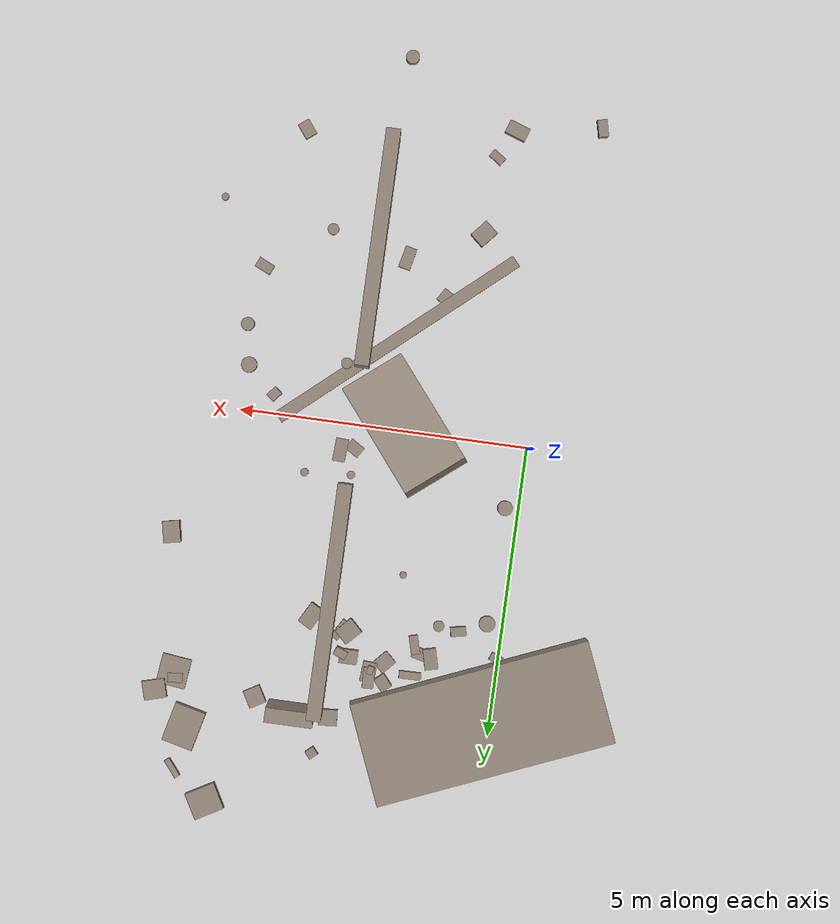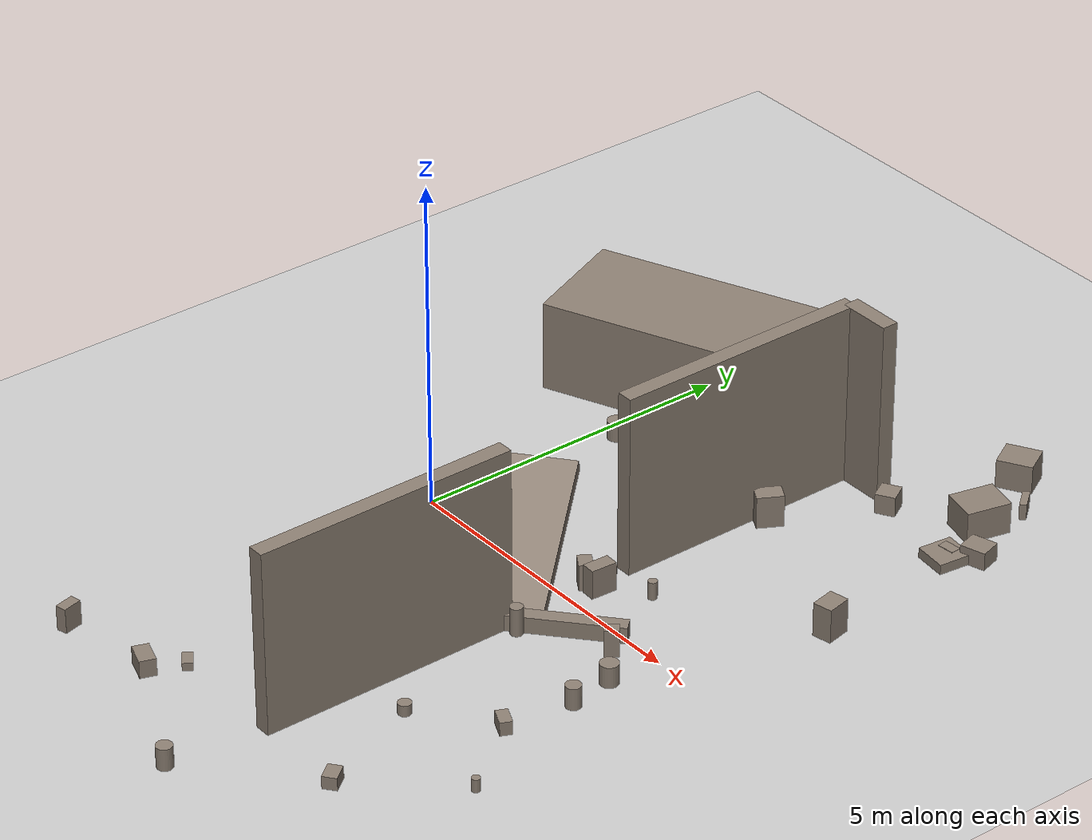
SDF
<sdf version="1.6">
 <world name="default">
  <model name="ground_plane">
   <static>1</static>
   <link name="link">
    <collision name="collision">
     <geometry><plane><normal>0 0 1</normal><size>100 100</size></plane></geometry>
     <surface><friction><ode><mu>100</mu><mu2>50</mu2></ode></friction></surface>
    </collision>
    <visual name="visual">
     <cast_shadows>0</cast_shadows>
     <geometry><plane><normal>0 0 1</normal><size>100 100</size></plane></geometry>
     <material>
      <script><uri>file://media/materials/scripts/gazebo.material</uri><name>Gazebo/Grey</name></script>
     </material>
    </visual>
   </link>
  </model>
  <model name="outer0_0">
   <static>1</static>
   <pose>3.000 -3.000 1.400 0 0.0000 1.5708</pose>
   <link name="l">
    <collision name="c"><geometry><box><size>4.000 0.250 2.800</size></box></geometry></collision>
    <visual name="v">
     <geometry><box><size>4.000 0.250 2.800</size></box></geometry>
     <material><ambient>0.55 0.5 0.45 1</ambient><diffuse>0.55 0.5 0.45 1</diffuse></material>
    </visual>
   </link>
  </model>
  <model name="outer0_1">
   <static>1</static>
   <pose>3.000 3.000 1.400 0 0.0000 1.5708</pose>
   <link name="l">
    <collision name="c"><geometry><box><size>4.000 0.250 2.800</size></box></geometry></collision>
    <visual name="v">
     <geometry><box><size>4.000 0.250 2.800</size></box></geometry>
     <material><ambient>0.55 0.5 0.45 1</ambient><diffuse>0.55 0.5 0.45 1</diffuse></material>
    </visual>
   </link>
  </model>
  <model name="outer3_0">
   <static>1</static>
   <pose>3.408 5.000 1.400 0 0.0000 0.0000</pose>
   <link name="l">
    <collision name="c"><geometry><box><size>0.816 0.250 2.800</size></box></geometry></collision>
    <visual name="v">
     <geometry><box><size>0.816 0.250 2.800</size></box></geometry>
     <material><ambient>0.55 0.5 0.45 1</ambient><diffuse>0.55 0.5 0.45 1</diffuse></material>
    </visual>
   </link>
  </model>
  <model name="rubble_16">
   <static>1</static>
   <pose>3.176 0.452 0.225 0 0.0000 3.0814</pose>
   <link name="l">
    <collision name="c"><geometry><box><size>0.215 0.399 0.449</size></box></geometry></collision>
    <visual name="v">
     <geometry><box><size>0.215 0.399 0.449</size></box></geometry>
     <material><ambient>0.55 0.5 0.45 1</ambient><diffuse>0.55 0.5 0.45 1</diffuse></material>
    </visual>
   </link>
  </model>
  <model name="rubble_17">
   <static>1</static>
   <pose>2.495 -0.105 0.134 0 0.0000 1.6504</pose>
   <link name="l">
    <collision name="c"><geometry><box><size>0.141 0.316 0.269</size></box></geometry></collision>
    <visual name="v">
     <geometry><box><size>0.141 0.316 0.269</size></box></geometry>
     <material><ambient>0.55 0.5 0.45 1</ambient><diffuse>0.55 0.5 0.45 1</diffuse></material>
    </visual>
   </link>
  </model>
  <model name="rubble_18">
   <static>1</static>
   <pose>2.935 0.392 0.203 0 0.0000 1.0112</pose>
   <link name="l">
    <collision name="c"><geometry><box><size>0.207 0.271 0.405</size></box></geometry></collision>
    <visual name="v">
     <geometry><box><size>0.207 0.271 0.405</size></box></geometry>
     <material><ambient>0.55 0.5 0.45 1</ambient><diffuse>0.55 0.5 0.45 1</diffuse></material>
    </visual>
   </link>
  </model>
  <model name="rubble_37">
   <static>1</static>
   <pose>5.205 5.525 0.240 0 0.0000 2.9082</pose>
   <link name="l">
    <collision name="c"><geometry><box><size>0.551 0.681 0.479</size></box></geometry></collision>
    <visual name="v">
     <geometry><box><size>0.551 0.681 0.479</size></box></geometry>
     <material><ambient>0.55 0.5 0.45 1</ambient><diffuse>0.55 0.5 0.45 1</diffuse></material>
    </visual>
   </link>
  </model>
  <model name="rubble_38">
   <static>1</static>
   <pose>4.070 4.863 0.155 0 0.0000 0.5248</pose>
   <link name="l">
    <collision name="c"><geometry><box><size>0.301 0.314 0.310</size></box></geometry></collision>
    <visual name="v">
     <geometry><box><size>0.301 0.314 0.310</size></box></geometry>
     <material><ambient>0.55 0.5 0.45 1</ambient><diffuse>0.55 0.5 0.45 1</diffuse></material>
    </visual>
   </link>
  </model>
  <model name="rubble_39">
   <static>1</static>
   <pose>5.475 4.727 0.081 0 0.0000 1.6444</pose>
   <link name="l">
    <collision name="c"><geometry><box><size>0.158 0.258 0.163</size></box></geometry></collision>
    <visual name="v">
     <geometry><box><size>0.158 0.258 0.163</size></box></geometry>
     <material><ambient>0.55 0.5 0.45 1</ambient><diffuse>0.55 0.5 0.45 1</diffuse></material>
    </visual>
   </link>
  </model>
  <model name="rubble_40">
   <static>1</static>
   <pose>5.800 4.971 0.137 0 0.0000 1.8531</pose>
   <link name="l">
    <collision name="c"><geometry><box><size>0.332 0.393 0.273</size></box></geometry></collision>
    <visual name="v">
     <geometry><box><size>0.332 0.393 0.273</size></box></geometry>
     <material><ambient>0.55 0.5 0.45 1</ambient><diffuse>0.55 0.5 0.45 1</diffuse></material>
    </visual>
   </link>
  </model>
  <model name="rubble_41">
   <static>1</static>
   <pose>5.513 4.620 0.077 0 0.0000 3.0235</pose>
   <link name="l">
    <collision name="c"><geometry><box><size>0.510 0.521 0.155</size></box></geometry></collision>
    <visual name="v">
     <geometry><box><size>0.510 0.521 0.155</size></box></geometry>
     <material><ambient>0.55 0.5 0.45 1</ambient><diffuse>0.55 0.5 0.45 1</diffuse></material>
    </visual>
   </link>
  </model>
  <model name="rubble_44">
   <static>1</static>
   <pose>4.681 6.755 0.222 0 0.0000 0.5138</pose>
   <link name="l">
    <collision name="c"><geometry><box><size>0.535 0.473 0.443</size></box></geometry></collision>
    <visual name="v">
     <geometry><box><size>0.535 0.473 0.443</size></box></geometry>
     <material><ambient>0.55 0.5 0.45 1</ambient><diffuse>0.55 0.5 0.45 1</diffuse></material>
    </visual>
   </link>
  </model>
  <model name="rubble_47">
   <static>1</static>
   <pose>5.863 2.236 0.260 0 0.0000 0.2051</pose>
   <link name="l">
    <collision name="c"><geometry><box><size>0.297 0.374 0.521</size></box></geometry></collision>
    <visual name="v">
     <geometry><box><size>0.297 0.374 0.521</size></box></geometry>
     <material><ambient>0.55 0.5 0.45 1</ambient><diffuse>0.55 0.5 0.45 1</diffuse></material>
    </visual>
   </link>
  </model>
  <model name="leaning_1">
   <static>1</static>
   <pose>2.145 -0.115 0.630 0 -0.4753 2.2491</pose>
   <link name="l">
    <collision name="c"><geometry><box><size>2.364 1.188 0.200</size></box></geometry></collision>
    <visual name="v">
     <geometry><box><size>2.364 1.188 0.200</size></box></geometry>
     <material><ambient>0.55 0.5 0.45 1</ambient><diffuse>0.55 0.5 0.45 1</diffuse></material>
    </visual>
   </link>
  </model>
  <model name="car_0">
   <static>1</static>
   <pose>0.145 4.740 0.700 0 0.0000 0.3973</pose>
   <link name="l">
    <collision name="c"><geometry><box><size>4.200 1.800 1.400</size></box></geometry></collision>
    <visual name="v">
     <geometry><box><size>4.200 1.800 1.400</size></box></geometry>
     <material><ambient>0.55 0.5 0.45 1</ambient><diffuse>0.55 0.5 0.45 1</diffuse></material>
    </visual>
   </link>
  </model>
  <model name="pole_0">
   <static>1</static>
   <pose>2.463 -1.570 0.125 0 0.0000 0.7157</pose>
   <link name="l">
    <collision name="c"><geometry><box><size>4.904 0.220 0.250</size></box></geometry></collision>
    <visual name="v">
     <geometry><box><size>4.904 0.220 0.250</size></box></geometry>
     <material><ambient>0.55 0.5 0.45 1</ambient><diffuse>0.55 0.5 0.45 1</diffuse></material>
    </visual>
   </link>
  </model>
  <model name="rubble_66">
   <static>1</static>
   <pose>1.348 3.752 0.070 0 0.0000 1.3406</pose>
   <link name="l">
    <collision name="c"><geometry><box><size>0.206 0.256 0.139</size></box></geometry></collision>
    <visual name="v">
     <geometry><box><size>0.206 0.256 0.139</size></box></geometry>
     <material><ambient>0.55 0.5 0.45 1</ambient><diffuse>0.55 0.5 0.45 1</diffuse></material>
    </visual>
   </link>
  </model>
  <model name="rubble_67">
   <static>1</static>
   <pose>2.759 3.521 0.154 0 0.0000 2.5828</pose>
   <link name="l">
    <collision name="c"><geometry><box><size>0.149 0.356 0.308</size></box></geometry></collision>
    <visual name="v">
     <geometry><box><size>0.149 0.356 0.308</size></box></geometry>
     <material><ambient>0.55 0.5 0.45 1</ambient><diffuse>0.55 0.5 0.45 1</diffuse></material>
    </visual>
   </link>
  </model>
  <model name="rubble_68">
   <static>1</static>
   <pose>2.616 3.526 0.226 0 0.0000 2.3801</pose>
   <link name="l">
    <collision name="c"><geometry><box><size>0.304 0.351 0.452</size></box></geometry></collision>
    <visual name="v">
     <geometry><box><size>0.304 0.351 0.452</size></box></geometry>
     <material><ambient>0.55 0.5 0.45 1</ambient><diffuse>0.55 0.5 0.45 1</diffuse></material>
    </visual>
   </link>
  </model>
  <model name="rubble_69">
   <static>1</static>
   <pose>1.461 3.605 0.162 0 0.0000 0.2723</pose>
   <link name="l">
    <collision name="c"><geometry><box><size>0.154 0.324 0.324</size></box></geometry></collision>
    <visual name="v">
     <geometry><box><size>0.154 0.324 0.324</size></box></geometry>
     <material><ambient>0.55 0.5 0.45 1</ambient><diffuse>0.55 0.5 0.45 1</diffuse></material>
    </visual>
   </link>
  </model>
  <model name="rubble_70">
   <static>1</static>
   <pose>1.466 4.142 0.138 0 0.0000 0.0154</pose>
   <link name="l">
    <collision name="c"><geometry><box><size>0.381 0.128 0.275</size></box></geometry></collision>
    <visual name="v">
     <geometry><box><size>0.381 0.128 0.275</size></box></geometry>
     <material><ambient>0.55 0.5 0.45 1</ambient><diffuse>0.55 0.5 0.45 1</diffuse></material>
    </visual>
   </link>
  </model>
  <model name="rubble_71">
   <static>1</static>
   <pose>1.035 4.541 0.290 0 0.0000 1.8422</pose>
   <link name="l">
    <collision name="c"><geometry><box><size>0.349 0.152 0.580</size></box></geometry></collision>
    <visual name="v">
     <geometry><box><size>0.349 0.152 0.580</size></box></geometry>
     <material><ambient>0.55 0.5 0.45 1</ambient><diffuse>0.55 0.5 0.45 1</diffuse></material>
    </visual>
   </link>
  </model>
  <model name="rubble_72">
   <static>1</static>
   <pose>3.285 3.348 0.247 0 0.0000 2.6297</pose>
   <link name="l">
    <collision name="c"><geometry><box><size>0.272 0.395 0.494</size></box></geometry></collision>
    <visual name="v">
     <geometry><box><size>0.272 0.395 0.494</size></box></geometry>
     <material><ambient>0.55 0.5 0.45 1</ambient><diffuse>0.55 0.5 0.45 1</diffuse></material>
    </visual>
   </link>
  </model>
  <model name="rubble_73">
   <static>1</static>
   <pose>1.913 4.325 0.247 0 0.0000 0.7116</pose>
   <link name="l">
    <collision name="c"><geometry><box><size>0.207 0.258 0.493</size></box></geometry></collision>
    <visual name="v">
     <geometry><box><size>0.207 0.258 0.493</size></box></geometry>
     <material><ambient>0.55 0.5 0.45 1</ambient><diffuse>0.55 0.5 0.45 1</diffuse></material>
    </visual>
   </link>
  </model>
  <model name="rubble_74">
   <static>1</static>
   <pose>1.931 3.979 0.086 0 0.0000 2.3891</pose>
   <link name="l">
    <collision name="c"><geometry><box><size>0.261 0.302 0.173</size></box></geometry></collision>
    <visual name="v">
     <geometry><box><size>0.261 0.302 0.173</size></box></geometry>
     <material><ambient>0.55 0.5 0.45 1</ambient><diffuse>0.55 0.5 0.45 1</diffuse></material>
    </visual>
   </link>
  </model>
  <model name="rubble_75">
   <static>1</static>
   <pose>2.771 5.046 0.171 0 0.0000 1.6337</pose>
   <link name="l">
    <collision name="c"><geometry><box><size>0.276 0.320 0.342</size></box></geometry></collision>
    <visual name="v">
     <geometry><box><size>0.276 0.320 0.342</size></box></geometry>
     <material><ambient>0.55 0.5 0.45 1</ambient><diffuse>0.55 0.5 0.45 1</diffuse></material>
    </visual>
   </link>
  </model>
  <model name="rubble_76">
   <static>1</static>
   <pose>1.693 5.042 0.293 0 0.0000 0.6141</pose>
   <link name="l">
    <collision name="c"><geometry><box><size>0.309 0.309 0.586</size></box></geometry></collision>
    <visual name="v">
     <geometry><box><size>0.309 0.309 0.586</size></box></geometry>
     <material><ambient>0.55 0.5 0.45 1</ambient><diffuse>0.55 0.5 0.45 1</diffuse></material>
    </visual>
   </link>
  </model>
  <model name="rubble_77">
   <static>1</static>
   <pose>2.183 4.180 0.122 0 0.0000 1.4952</pose>
   <link name="l">
    <collision name="c"><geometry><box><size>0.352 0.246 0.244</size></box></geometry></collision>
    <visual name="v">
     <geometry><box><size>0.352 0.246 0.244</size></box></geometry>
     <material><ambient>0.55 0.5 0.45 1</ambient><diffuse>0.55 0.5 0.45 1</diffuse></material>
    </visual>
   </link>
  </model>
  <model name="rubble_78">
   <static>1</static>
   <pose>1.422 4.812 0.198 0 0.0000 1.1587</pose>
   <link name="l">
    <collision name="c"><geometry><box><size>0.353 0.303 0.396</size></box></geometry></collision>
    <visual name="v">
     <geometry><box><size>0.353 0.303 0.396</size></box></geometry>
     <material><ambient>0.55 0.5 0.45 1</ambient><diffuse>0.55 0.5 0.45 1</diffuse></material>
    </visual>
   </link>
  </model>
  <model name="rubble_79">
   <static>1</static>
   <pose>2.700 3.910 0.275 0 0.0000 2.7550</pose>
   <link name="l">
    <collision name="c"><geometry><box><size>0.216 0.149 0.549</size></box></geometry></collision>
    <visual name="v">
     <geometry><box><size>0.216 0.149 0.549</size></box></geometry>
     <material><ambient>0.55 0.5 0.45 1</ambient><diffuse>0.55 0.5 0.45 1</diffuse></material>
    </visual>
   </link>
  </model>
  <model name="rubble_80">
   <static>1</static>
   <pose>2.100 4.878 0.106 0 0.0000 1.9060</pose>
   <link name="l">
    <collision name="c"><geometry><box><size>0.291 0.337 0.212</size></box></geometry></collision>
    <visual name="v">
     <geometry><box><size>0.291 0.337 0.212</size></box></geometry>
     <material><ambient>0.55 0.5 0.45 1</ambient><diffuse>0.55 0.5 0.45 1</diffuse></material>
    </visual>
   </link>
  </model>
  <model name="rubble_81">
   <static>1</static>
   <pose>0.745 3.274 0.246 0 0.0000 0.2118</pose>
   <link name="l">
    <collision name="c"><geometry><box><size>0.265 0.158 0.491</size></box></geometry></collision>
    <visual name="v">
     <geometry><box><size>0.265 0.158 0.491</size></box></geometry>
     <material><ambient>0.55 0.5 0.45 1</ambient><diffuse>0.55 0.5 0.45 1</diffuse></material>
    </visual>
   </link>
  </model>
  <model name="rubble_82">
   <static>1</static>
   <pose>1.091 4.539 0.198 0 0.0000 1.1340</pose>
   <link name="l">
    <collision name="c"><geometry><box><size>0.188 0.183 0.397</size></box></geometry></collision>
    <visual name="v">
     <geometry><box><size>0.188 0.183 0.397</size></box></geometry>
     <material><ambient>0.55 0.5 0.45 1</ambient><diffuse>0.55 0.5 0.45 1</diffuse></material>
    </visual>
   </link>
  </model>
  <model name="rubble_83">
   <static>1</static>
   <pose>1.520 5.693 0.153 0 0.0000 1.7539</pose>
   <link name="l">
    <collision name="c"><geometry><box><size>0.291 0.303 0.306</size></box></geometry></collision>
    <visual name="v">
     <geometry><box><size>0.291 0.303 0.306</size></box></geometry>
     <material><ambient>0.55 0.5 0.45 1</ambient><diffuse>0.55 0.5 0.45 1</diffuse></material>
    </visual>
   </link>
  </model>
  <model name="rubble_84">
   <static>1</static>
   <pose>-1.077 4.955 0.152 0 0.0000 1.9189</pose>
   <link name="l">
    <collision name="c"><geometry><box><size>0.264 0.284 0.304</size></box></geometry></collision>
    <visual name="v">
     <geometry><box><size>0.264 0.284 0.304</size></box></geometry>
     <material><ambient>0.55 0.5 0.45 1</ambient><diffuse>0.55 0.5 0.45 1</diffuse></material>
    </visual>
   </link>
  </model>
  <model name="rubble_85">
   <static>1</static>
   <pose>1.159 3.808 0.270 0 0.0000 0.2555</pose>
   <link name="l">
    <collision name="c"><geometry><box><size>0.228 0.353 0.540</size></box></geometry></collision>
    <visual name="v">
     <geometry><box><size>0.228 0.353 0.540</size></box></geometry>
     <material><ambient>0.55 0.5 0.45 1</ambient><diffuse>0.55 0.5 0.45 1</diffuse></material>
    </visual>
   </link>
  </model>
  <model name="rubble_86">
   <static>1</static>
   <pose>1.100 4.730 0.293 0 0.0000 0.5740</pose>
   <link name="l">
    <collision name="c"><geometry><box><size>0.104 0.245 0.586</size></box></geometry></collision>
    <visual name="v">
     <geometry><box><size>0.104 0.245 0.586</size></box></geometry>
     <material><ambient>0.55 0.5 0.45 1</ambient><diffuse>0.55 0.5 0.45 1</diffuse></material>
    </visual>
   </link>
  </model>
  <model name="rubble_87">
   <static>1</static>
   <pose>1.503 5.097 0.217 0 0.0000 2.6161</pose>
   <link name="l">
    <collision name="c"><geometry><box><size>0.281 0.255 0.433</size></box></geometry></collision>
    <visual name="v">
     <geometry><box><size>0.281 0.255 0.433</size></box></geometry>
     <material><ambient>0.55 0.5 0.45 1</ambient><diffuse>0.55 0.5 0.45 1</diffuse></material>
    </visual>
   </link>
  </model>
  <model name="rubble_88">
   <static>1</static>
   <pose>0.470 4.121 0.104 0 0.0000 1.5737</pose>
   <link name="l">
    <collision name="c"><geometry><box><size>0.232 0.332 0.208</size></box></geometry></collision>
    <visual name="v">
     <geometry><box><size>0.232 0.332 0.208</size></box></geometry>
     <material><ambient>0.55 0.5 0.45 1</ambient><diffuse>0.55 0.5 0.45 1</diffuse></material>
    </visual>
   </link>
  </model>
  <model name="rubble_89">
   <static>1</static>
   <pose>2.158 4.135 0.243 0 0.0000 1.3631</pose>
   <link name="l">
    <collision name="c"><geometry><box><size>0.143 0.104 0.486</size></box></geometry></collision>
    <visual name="v">
     <geometry><box><size>0.143 0.104 0.486</size></box></geometry>
     <material><ambient>0.55 0.5 0.45 1</ambient><diffuse>0.55 0.5 0.45 1</diffuse></material>
    </visual>
   </link>
  </model>
  <model name="rubble_90">
   <static>1</static>
   <pose>2.561 3.954 0.246 0 0.0000 3.1400</pose>
   <link name="l">
    <collision name="c"><geometry><box><size>0.315 0.245 0.492</size></box></geometry></collision>
    <visual name="v">
     <geometry><box><size>0.315 0.245 0.492</size></box></geometry>
     <material><ambient>0.55 0.5 0.45 1</ambient><diffuse>0.55 0.5 0.45 1</diffuse></material>
    </visual>
   </link>
  </model>
  <model name="rubble_91">
   <static>1</static>
   <pose>0.454 4.532 0.183 0 0.0000 1.3580</pose>
   <link name="l">
    <collision name="c"><geometry><box><size>0.146 0.160 0.366</size></box></geometry></collision>
    <visual name="v">
     <geometry><box><size>0.146 0.160 0.366</size></box></geometry>
     <material><ambient>0.55 0.5 0.45 1</ambient><diffuse>0.55 0.5 0.45 1</diffuse></material>
    </visual>
   </link>
  </model>
  <model name="rubble_92">
   <static>1</static>
   <pose>2.170 4.273 0.203 0 0.0000 1.5961</pose>
   <link name="l">
    <collision name="c"><geometry><box><size>0.361 0.195 0.405</size></box></geometry></collision>
    <visual name="v">
     <geometry><box><size>0.361 0.195 0.405</size></box></geometry>
     <material><ambient>0.55 0.5 0.45 1</ambient><diffuse>0.55 0.5 0.45 1</diffuse></material>
    </visual>
   </link>
  </model>
  <model name="rubble_93">
   <static>1</static>
   <pose>2.091 4.890 0.276 0 0.0000 1.7850</pose>
   <link name="l">
    <collision name="c"><geometry><box><size>0.184 0.319 0.552</size></box></geometry></collision>
    <visual name="v">
     <geometry><box><size>0.184 0.319 0.552</size></box></geometry>
     <material><ambient>0.55 0.5 0.45 1</ambient><diffuse>0.55 0.5 0.45 1</diffuse></material>
    </visual>
   </link>
  </model>
  <model name="debris_0">
   <static>1</static>
   <pose>4.896 -2.515 0.105 0 0.0000 2.7089</pose>
   <link name="l">
    <collision name="c"><geometry><box><size>0.295 0.179 0.209</size></box></geometry></collision>
    <visual name="v">
     <geometry><box><size>0.295 0.179 0.209</size></box></geometry>
     <material><ambient>0.55 0.5 0.45 1</ambient><diffuse>0.55 0.5 0.45 1</diffuse></material>
    </visual>
   </link>
  </model>
  <model name="debris_2">
   <static>1</static>
   <pose>1.172 -4.915 0.064 0 0.0000 2.5358</pose>
   <link name="l">
    <collision name="c"><geometry><box><size>0.260 0.150 0.127</size></box></geometry></collision>
    <visual name="v">
     <geometry><box><size>0.260 0.150 0.127</size></box></geometry>
     <material><ambient>0.55 0.5 0.45 1</ambient><diffuse>0.55 0.5 0.45 1</diffuse></material>
    </visual>
   </link>
  </model>
  <model name="debris_3">
   <static>1</static>
   <pose>4.432 -0.348 0.213 0 0.0000 0.8854</pose>
   <link name="l">
    <collision name="c"><geometry><box><size>0.207 0.167 0.426</size></box></geometry></collision>
    <visual name="v">
     <geometry><box><size>0.207 0.167 0.426</size></box></geometry>
     <material><ambient>0.55 0.5 0.45 1</ambient><diffuse>0.55 0.5 0.45 1</diffuse></material>
    </visual>
   </link>
  </model>
  <model name="debris_4">
   <static>1</static>
   <pose>5.049 -1.484 0.169 0 0.0000 0.0000</pose>
   <link name="l">
    <collision name="c">
     <geometry><cylinder><radius>0.116</radius><length>0.338</length></cylinder></geometry>
    </collision>
    <visual name="v">
     <geometry><cylinder><radius>0.116</radius><length>0.338</length></cylinder></geometry>
     <material><ambient>0.55 0.5 0.45 1</ambient><diffuse>0.55 0.5 0.45 1</diffuse></material>
    </visual>
   </link>
  </model>
  <model name="debris_5">
   <static>1</static>
   <pose>0.229 1.065 0.157 0 0.0000 0.0000</pose>
   <link name="l">
    <collision name="c">
     <geometry><cylinder><radius>0.130</radius><length>0.314</length></cylinder></geometry>
    </collision>
    <visual name="v">
     <geometry><cylinder><radius>0.130</radius><length>0.314</length></cylinder></geometry>
     <material><ambient>0.55 0.5 0.45 1</ambient><diffuse>0.55 0.5 0.45 1</diffuse></material>
    </visual>
   </link>
  </model>
  <model name="debris_6">
   <static>1</static>
   <pose>0.893 -5.411 0.136 0 0.0000 2.8132</pose>
   <link name="l">
    <collision name="c"><geometry><box><size>0.378 0.242 0.272</size></box></geometry></collision>
    <visual name="v">
     <geometry><box><size>0.378 0.242 0.272</size></box></geometry>
     <material><ambient>0.55 0.5 0.45 1</ambient><diffuse>0.55 0.5 0.45 1</diffuse></material>
    </visual>
   </link>
  </model>
  <model name="debris_8">
   <static>1</static>
   <pose>2.853 -6.420 0.168 0 0.0000 0.0000</pose>
   <link name="l">
    <collision name="c">
     <geometry><cylinder><radius>0.118</radius><length>0.337</length></cylinder></geometry>
    </collision>
    <visual name="v">
     <geometry><cylinder><radius>0.118</radius><length>0.337</length></cylinder></geometry>
     <material><ambient>0.55 0.5 0.45 1</ambient><diffuse>0.55 0.5 0.45 1</diffuse></material>
    </visual>
   </link>
  </model>
  <model name="debris_10">
   <static>1</static>
   <pose>4.486 -4.953 0.098 0 0.0000 2.2258</pose>
   <link name="l">
    <collision name="c"><geometry><box><size>0.287 0.213 0.196</size></box></geometry></collision>
    <visual name="v">
     <geometry><box><size>0.287 0.213 0.196</size></box></geometry>
     <material><ambient>0.55 0.5 0.45 1</ambient><diffuse>0.55 0.5 0.45 1</diffuse></material>
    </visual>
   </link>
  </model>
  <model name="debris_11">
   <static>1</static>
   <pose>1.085 3.236 0.083 0 0.0000 0.0000</pose>
   <link name="l">
    <collision name="c">
     <geometry><cylinder><radius>0.093</radius><length>0.165</length></cylinder></geometry>
    </collision>
    <visual name="v">
     <geometry><cylinder><radius>0.093</radius><length>0.165</length></cylinder></geometry>
     <material><ambient>0.55 0.5 0.45 1</ambient><diffuse>0.55 0.5 0.45 1</diffuse></material>
    </visual>
   </link>
  </model>
  <model name="debris_13">
   <static>1</static>
   <pose>2.969 5.694 0.147 0 0.0000 2.2999</pose>
   <link name="l">
    <collision name="c"><geometry><box><size>0.155 0.173 0.294</size></box></geometry></collision>
    <visual name="v">
     <geometry><box><size>0.155 0.173 0.294</size></box></geometry>
     <material><ambient>0.55 0.5 0.45 1</ambient><diffuse>0.55 0.5 0.45 1</diffuse></material>
    </visual>
   </link>
  </model>
  <model name="debris_14">
   <static>1</static>
   <pose>5.733 -3.607 0.101 0 0.0000 0.0000</pose>
   <link name="l">
    <collision name="c">
     <geometry><cylinder><radius>0.062</radius><length>0.202</length></cylinder></geometry>
    </collision>
    <visual name="v">
     <geometry><cylinder><radius>0.062</radius><length>0.202</length></cylinder></geometry>
     <material><ambient>0.55 0.5 0.45 1</ambient><diffuse>0.55 0.5 0.45 1</diffuse></material>
    </visual>
   </link>
  </model>
  <model name="debris_16">
   <static>1</static>
   <pose>1.717 -2.389 0.089 0 0.0000 2.5839</pose>
   <link name="l">
    <collision name="c"><geometry><box><size>0.248 0.242 0.177</size></box></geometry></collision>
    <visual name="v">
     <geometry><box><size>0.248 0.242 0.177</size></box></geometry>
     <material><ambient>0.55 0.5 0.45 1</ambient><diffuse>0.55 0.5 0.45 1</diffuse></material>
    </visual>
   </link>
  </model>
  <model name="debris_18">
   <static>1</static>
   <pose>0.035 3.657 0.100 0 0.0000 1.1966</pose>
   <link name="l">
    <collision name="c"><geometry><box><size>0.139 0.210 0.200</size></box></geometry></collision>
    <visual name="v">
     <geometry><box><size>0.139 0.210 0.200</size></box></geometry>
     <material><ambient>0.55 0.5 0.45 1</ambient><diffuse>0.55 0.5 0.45 1</diffuse></material>
    </visual>
   </link>
  </model>
  <model name="debris_19">
   <static>1</static>
   <pose>3.268 -1.041 0.217 0 0.0000 0.0000</pose>
   <link name="l">
    <collision name="c">
     <geometry><cylinder><radius>0.096</radius><length>0.434</length></cylinder></geometry>
    </collision>
    <visual name="v">
     <geometry><cylinder><radius>0.096</radius><length>0.434</length></cylinder></geometry>
     <material><ambient>0.55 0.5 0.45 1</ambient><diffuse>0.55 0.5 0.45 1</diffuse></material>
    </visual>
   </link>
  </model>
  <model name="debris_20">
   <static>1</static>
   <pose>-0.557 -5.641 0.191 0 0.0000 1.8109</pose>
   <link name="l">
    <collision name="c"><geometry><box><size>0.300 0.166 0.382</size></box></geometry></collision>
    <visual name="v">
     <geometry><box><size>0.300 0.166 0.382</size></box></geometry>
     <material><ambient>0.55 0.5 0.45 1</ambient><diffuse>0.55 0.5 0.45 1</diffuse></material>
    </visual>
   </link>
  </model>
  <model name="debris_21">
   <static>1</static>
   <pose>3.811 -3.306 0.085 0 0.0000 0.0000</pose>
   <link name="l">
    <collision name="c">
     <geometry><cylinder><radius>0.098</radius><length>0.169</length></cylinder></geometry>
    </collision>
    <visual name="v">
     <geometry><cylinder><radius>0.098</radius><length>0.169</length></cylinder></geometry>
     <material><ambient>0.55 0.5 0.45 1</ambient><diffuse>0.55 0.5 0.45 1</diffuse></material>
    </visual>
   </link>
  </model>
  <model name="debris_22">
   <static>1</static>
   <pose>0.268 3.083 0.144 0 0.0000 0.0000</pose>
   <link name="l">
    <collision name="c">
     <geometry><cylinder><radius>0.139</radius><length>0.288</length></cylinder></geometry>
    </collision>
    <visual name="v">
     <geometry><cylinder><radius>0.139</radius><length>0.288</length></cylinder></geometry>
     <material><ambient>0.55 0.5 0.45 1</ambient><diffuse>0.55 0.5 0.45 1</diffuse></material>
    </visual>
   </link>
  </model>
  <model name="debris_23">
   <static>1</static>
   <pose>1.225 -3.566 0.185 0 0.0000 0.8614</pose>
   <link name="l">
    <collision name="c"><geometry><box><size>0.356 0.295 0.369</size></box></geometry></collision>
    <visual name="v">
     <geometry><box><size>0.356 0.295 0.369</size></box></geometry>
     <material><ambient>0.55 0.5 0.45 1</ambient><diffuse>0.55 0.5 0.45 1</diffuse></material>
    </visual>
   </link>
  </model>
  <model name="debris_24">
   <static>1</static>
   <pose>5.314 6.276 0.126 0 0.0000 2.2564</pose>
   <link name="l">
    <collision name="c"><geometry><box><size>0.351 0.104 0.251</size></box></geometry></collision>
    <visual name="v">
     <geometry><box><size>0.351 0.104 0.251</size></box></geometry>
     <material><ambient>0.55 0.5 0.45 1</ambient><diffuse>0.55 0.5 0.45 1</diffuse></material>
    </visual>
   </link>
  </model>
  <model name="debris_31">
   <static>1</static>
   <pose>2.940 0.855 0.066 0 0.0000 0.0000</pose>
   <link name="l">
    <collision name="c">
     <geometry><cylinder><radius>0.070</radius><length>0.131</length></cylinder></geometry>
    </collision>
    <visual name="v">
     <geometry><cylinder><radius>0.070</radius><length>0.131</length></cylinder></geometry>
     <material><ambient>0.55 0.5 0.45 1</ambient><diffuse>0.55 0.5 0.45 1</diffuse></material>
    </visual>
   </link>
  </model>
  <model name="debris_35">
   <static>1</static>
   <pose>0.301 5.363 0.109 0 0.0000 0.0000</pose>
   <link name="l">
    <collision name="c">
     <geometry><cylinder><radius>0.070</radius><length>0.218</length></cylinder></geometry>
    </collision>
    <visual name="v">
     <geometry><cylinder><radius>0.070</radius><length>0.218</length></cylinder></geometry>
     <material><ambient>0.55 0.5 0.45 1</ambient><diffuse>0.55 0.5 0.45 1</diffuse></material>
    </visual>
   </link>
  </model>
  <model name="debris_38">
   <static>1</static>
   <pose>2.473 -2.982 0.109 0 0.0000 1.3544</pose>
   <link name="l">
    <collision name="c"><geometry><box><size>0.382 0.206 0.219</size></box></geometry></collision>
    <visual name="v">
     <geometry><box><size>0.382 0.206 0.219</size></box></geometry>
     <material><ambient>0.55 0.5 0.45 1</ambient><diffuse>0.55 0.5 0.45 1</diffuse></material>
    </visual>
   </link>
  </model>
  <model name="debris_40">
   <static>1</static>
   <pose>4.934 -0.792 0.162 0 0.0000 0.0000</pose>
   <link name="l">
    <collision name="c">
     <geometry><cylinder><radius>0.136</radius><length>0.325</length></cylinder></geometry>
    </collision>
    <visual name="v">
     <geometry><cylinder><radius>0.136</radius><length>0.325</length></cylinder></geometry>
     <material><ambient>0.55 0.5 0.45 1</ambient><diffuse>0.55 0.5 0.45 1</diffuse></material>
    </visual>
   </link>
  </model>
  <model name="debris_41">
   <static>1</static>
   <pose>1.812 2.443 0.123 0 0.0000 0.0000</pose>
   <link name="l">
    <collision name="c">
     <geometry><cylinder><radius>0.058</radius><length>0.245</length></cylinder></geometry>
    </collision>
    <visual name="v">
     <geometry><cylinder><radius>0.058</radius><length>0.245</length></cylinder></geometry>
     <material><ambient>0.55 0.5 0.45 1</ambient><diffuse>0.55 0.5 0.45 1</diffuse></material>
    </visual>
   </link>
  </model>
  <model name="debris_42">
   <static>1</static>
   <pose>3.739 0.916 0.137 0 0.0000 0.0000</pose>
   <link name="l">
    <collision name="c">
     <geometry><cylinder><radius>0.068</radius><length>0.275</length></cylinder></geometry>
    </collision>
    <visual name="v">
     <geometry><cylinder><radius>0.068</radius><length>0.275</length></cylinder></geometry>
     <material><ambient>0.55 0.5 0.45 1</ambient><diffuse>0.55 0.5 0.45 1</diffuse></material>
    </visual>
   </link>
  </model>
 </world>
</sdf>
